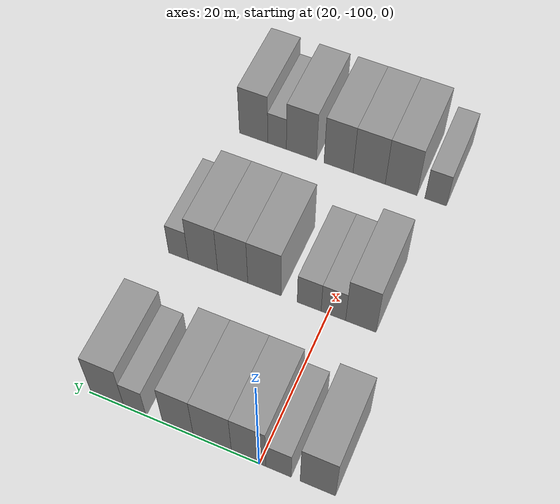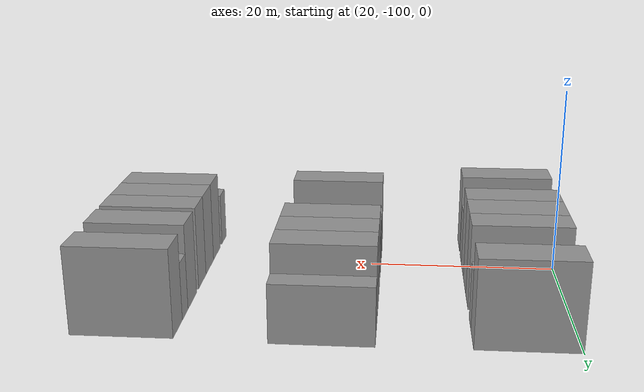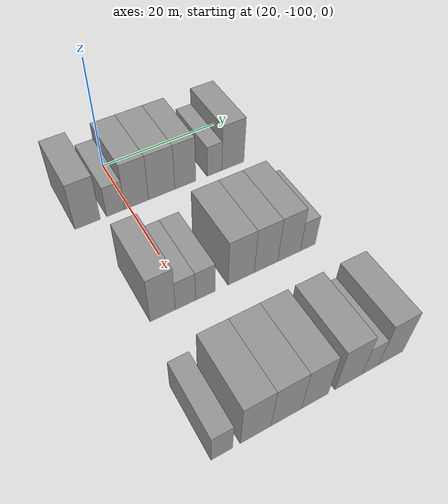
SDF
<sdf version="1.6">
 <world name="default">
  <model name="building_29">
   <static>1</static>
   <pose>25.0000 -106.5607 0 0.000000 0.000000 0.000000</pose>
   <link name="link">
    <pose>0 0 4.50 0 0 0</pose>
    <collision name="collision"><geometry><box><size>10.0000 3.9310 9.0000</size></box></geometry></collision>
    <visual name="visual">
     <cast_shadows>0</cast_shadows>
     <geometry><box><size>10.0000 3.9310 9.0000</size></box></geometry>
     <material>
      <script>
       <uri>model://grey_wall/materials/scripts</uri>
       <uri>model://grey_wall/materials/textures</uri>
       <name>vrc/grey_wall</name>
      </script>
     </material>
    </visual>
   </link>
  </model>
  <model name="building_30">
   <static>1</static>
   <pose>25.0000 -102.1648 0 0.000000 0.000000 0.000000</pose>
   <link name="link">
    <pose>0 0 3.00 0 0 0</pose>
    <collision name="collision"><geometry><box><size>10.0000 2.8607 6.0000</size></box></geometry></collision>
    <visual name="visual">
     <cast_shadows>0</cast_shadows>
     <geometry><box><size>10.0000 2.8607 6.0000</size></box></geometry>
     <material>
      <script>
       <uri>model://grey_wall/materials/scripts</uri>
       <uri>model://grey_wall/materials/textures</uri>
       <name>vrc/grey_wall</name>
      </script>
     </material>
    </visual>
   </link>
  </model>
  <model name="building_31">
   <static>1</static>
   <pose>25.0000 -98.7727 0 0.000000 0.000000 0.000000</pose>
   <link name="link">
    <pose>0 0 4.50 0 0 0</pose>
    <collision name="collision"><geometry><box><size>10.0000 3.9235 9.0000</size></box></geometry></collision>
    <visual name="visual">
     <cast_shadows>0</cast_shadows>
     <geometry><box><size>10.0000 3.9235 9.0000</size></box></geometry>
     <material>
      <script>
       <uri>model://grey_wall/materials/scripts</uri>
       <uri>model://grey_wall/materials/textures</uri>
       <name>vrc/grey_wall</name>
      </script>
     </material>
    </visual>
   </link>
  </model>
  <model name="building_32">
   <static>1</static>
   <pose>25.0000 -94.6060 0 0.000000 0.000000 0.000000</pose>
   <link name="link">
    <pose>0 0 4.50 0 0 0</pose>
    <collision name="collision"><geometry><box><size>10.0000 4.4098 9.0000</size></box></geometry></collision>
    <visual name="visual">
     <cast_shadows>0</cast_shadows>
     <geometry><box><size>10.0000 4.4098 9.0000</size></box></geometry>
     <material>
      <script>
       <uri>model://grey_wall/materials/scripts</uri>
       <uri>model://grey_wall/materials/textures</uri>
       <name>vrc/grey_wall</name>
      </script>
     </material>
    </visual>
   </link>
  </model>
  <model name="building_33">
   <static>1</static>
   <pose>25.0000 -90.6006 0 0.000000 0.000000 0.000000</pose>
   <link name="link">
    <pose>0 0 4.50 0 0 0</pose>
    <collision name="collision"><geometry><box><size>10.0000 3.6011 9.0000</size></box></geometry></collision>
    <visual name="visual">
     <cast_shadows>0</cast_shadows>
     <geometry><box><size>10.0000 3.6011 9.0000</size></box></geometry>
     <material>
      <script>
       <uri>model://grey_wall/materials/scripts</uri>
       <uri>model://grey_wall/materials/textures</uri>
       <name>vrc/grey_wall</name>
      </script>
     </material>
    </visual>
   </link>
  </model>
  <model name="building_34">
   <static>1</static>
   <pose>25.0000 -85.4847 0 0.000000 0.000000 0.000000</pose>
   <link name="link">
    <pose>0 0 3.00 0 0 0</pose>
    <collision name="collision"><geometry><box><size>10.0000 2.6308 6.0000</size></box></geometry></collision>
    <visual name="visual">
     <cast_shadows>0</cast_shadows>
     <geometry><box><size>10.0000 2.6308 6.0000</size></box></geometry>
     <material>
      <script>
       <uri>model://grey_wall/materials/scripts</uri>
       <uri>model://grey_wall/materials/textures</uri>
       <name>vrc/grey_wall</name>
      </script>
     </material>
    </visual>
   </link>
  </model>
  <model name="building_35">
   <static>1</static>
   <pose>25.0000 -82.1748 0 0.000000 0.000000 0.000000</pose>
   <link name="link">
    <pose>0 0 4.50 0 0 0</pose>
    <collision name="collision"><geometry><box><size>10.0000 3.9889 9.0000</size></box></geometry></collision>
    <visual name="visual">
     <cast_shadows>0</cast_shadows>
     <geometry><box><size>10.0000 3.9889 9.0000</size></box></geometry>
     <material>
      <script>
       <uri>model://grey_wall/materials/scripts</uri>
       <uri>model://grey_wall/materials/textures</uri>
       <name>vrc/grey_wall</name>
      </script>
     </material>
    </visual>
   </link>
  </model>
  <model name="building_146">
   <static>1</static>
   <pose>44.0000 -103.9223 0 0.000000 0.000000 0.000000</pose>
   <link name="link">
    <pose>0 0 4.50 0 0 0</pose>
    <collision name="collision"><geometry><box><size>10.0000 3.6464 9.0000</size></box></geometry></collision>
    <visual name="visual">
     <cast_shadows>0</cast_shadows>
     <geometry><box><size>10.0000 3.6464 9.0000</size></box></geometry>
     <material>
      <script>
       <uri>model://grey_wall/materials/scripts</uri>
       <uri>model://grey_wall/materials/textures</uri>
       <name>vrc/grey_wall</name>
      </script>
     </material>
    </visual>
   </link>
  </model>
  <model name="building_147">
   <static>1</static>
   <pose>44.0000 -100.6152 0 0.000000 0.000000 0.000000</pose>
   <link name="link">
    <pose>0 0 3.00 0 0 0</pose>
    <collision name="collision"><geometry><box><size>10.0000 2.9677 6.0000</size></box></geometry></collision>
    <visual name="visual">
     <cast_shadows>0</cast_shadows>
     <geometry><box><size>10.0000 2.9677 6.0000</size></box></geometry>
     <material>
      <script>
       <uri>model://grey_wall/materials/scripts</uri>
       <uri>model://grey_wall/materials/textures</uri>
       <name>vrc/grey_wall</name>
      </script>
     </material>
    </visual>
   </link>
  </model>
  <model name="building_148">
   <static>1</static>
   <pose>44.0000 -97.6734 0 0.000000 0.000000 0.000000</pose>
   <link name="link">
    <pose>0 0 3.00 0 0 0</pose>
    <collision name="collision"><geometry><box><size>10.0000 2.9159 6.0000</size></box></geometry></collision>
    <visual name="visual">
     <cast_shadows>0</cast_shadows>
     <geometry><box><size>10.0000 2.9159 6.0000</size></box></geometry>
     <material>
      <script>
       <uri>model://grey_wall/materials/scripts</uri>
       <uri>model://grey_wall/materials/textures</uri>
       <name>vrc/grey_wall</name>
      </script>
     </material>
    </visual>
   </link>
  </model>
  <model name="building_149">
   <static>1</static>
   <pose>44.0000 -92.1470 0 0.000000 0.000000 0.000000</pose>
   <link name="link">
    <pose>0 0 4.50 0 0 0</pose>
    <collision name="collision"><geometry><box><size>10.0000 4.1369 9.0000</size></box></geometry></collision>
    <visual name="visual">
     <cast_shadows>0</cast_shadows>
     <geometry><box><size>10.0000 4.1369 9.0000</size></box></geometry>
     <material>
      <script>
       <uri>model://grey_wall/materials/scripts</uri>
       <uri>model://grey_wall/materials/textures</uri>
       <name>vrc/grey_wall</name>
      </script>
     </material>
    </visual>
   </link>
  </model>
  <model name="building_150">
   <static>1</static>
   <pose>44.0000 -88.1755 0 0.000000 0.000000 0.000000</pose>
   <link name="link">
    <pose>0 0 4.50 0 0 0</pose>
    <collision name="collision"><geometry><box><size>10.0000 3.8061 9.0000</size></box></geometry></collision>
    <visual name="visual">
     <cast_shadows>0</cast_shadows>
     <geometry><box><size>10.0000 3.8061 9.0000</size></box></geometry>
     <material>
      <script>
       <uri>model://grey_wall/materials/scripts</uri>
       <uri>model://grey_wall/materials/textures</uri>
       <name>vrc/grey_wall</name>
      </script>
     </material>
    </visual>
   </link>
  </model>
  <model name="building_151">
   <static>1</static>
   <pose>44.0000 -84.3957 0 0.000000 0.000000 0.000000</pose>
   <link name="link">
    <pose>0 0 4.50 0 0 0</pose>
    <collision name="collision"><geometry><box><size>10.0000 3.7534 9.0000</size></box></geometry></collision>
    <visual name="visual">
     <cast_shadows>0</cast_shadows>
     <geometry><box><size>10.0000 3.7534 9.0000</size></box></geometry>
     <material>
      <script>
       <uri>model://grey_wall/materials/scripts</uri>
       <uri>model://grey_wall/materials/textures</uri>
       <name>vrc/grey_wall</name>
      </script>
     </material>
    </visual>
   </link>
  </model>
  <model name="building_152">
   <static>1</static>
   <pose>44.0000 -81.2618 0 0.000000 0.000000 0.000000</pose>
   <link name="link">
    <pose>0 0 3.00 0 0 0</pose>
    <collision name="collision"><geometry><box><size>10.0000 2.5145 6.0000</size></box></geometry></collision>
    <visual name="visual">
     <cast_shadows>0</cast_shadows>
     <geometry><box><size>10.0000 2.5145 6.0000</size></box></geometry>
     <material>
      <script>
       <uri>model://grey_wall/materials/scripts</uri>
       <uri>model://grey_wall/materials/textures</uri>
       <name>vrc/grey_wall</name>
      </script>
     </material>
    </visual>
   </link>
  </model>
  <model name="building_264">
   <static>1</static>
   <pose>63.0000 -106.1515 0 0.000000 0.000000 0.000000</pose>
   <link name="link">
    <pose>0 0 3.00 0 0 0</pose>
    <collision name="collision"><geometry><box><size>10.0000 2.7320 6.0000</size></box></geometry></collision>
    <visual name="visual">
     <cast_shadows>0</cast_shadows>
     <geometry><box><size>10.0000 2.7320 6.0000</size></box></geometry>
     <material>
      <script>
       <uri>model://grey_wall/materials/scripts</uri>
       <uri>model://grey_wall/materials/textures</uri>
       <name>vrc/grey_wall</name>
      </script>
     </material>
    </visual>
   </link>
  </model>
  <model name="building_265">
   <static>1</static>
   <pose>63.0000 -101.7500 0 0.000000 0.000000 0.000000</pose>
   <link name="link">
    <pose>0 0 4.50 0 0 0</pose>
    <collision name="collision"><geometry><box><size>10.0000 4.0712 9.0000</size></box></geometry></collision>
    <visual name="visual">
     <cast_shadows>0</cast_shadows>
     <geometry><box><size>10.0000 4.0712 9.0000</size></box></geometry>
     <material>
      <script>
       <uri>model://grey_wall/materials/scripts</uri>
       <uri>model://grey_wall/materials/textures</uri>
       <name>vrc/grey_wall</name>
      </script>
     </material>
    </visual>
   </link>
  </model>
  <model name="building_266">
   <static>1</static>
   <pose>63.0000 -97.6245 0 0.000000 0.000000 0.000000</pose>
   <link name="link">
    <pose>0 0 4.50 0 0 0</pose>
    <collision name="collision"><geometry><box><size>10.0000 4.1798 9.0000</size></box></geometry></collision>
    <visual name="visual">
     <cast_shadows>0</cast_shadows>
     <geometry><box><size>10.0000 4.1798 9.0000</size></box></geometry>
     <material>
      <script>
       <uri>model://grey_wall/materials/scripts</uri>
       <uri>model://grey_wall/materials/textures</uri>
       <name>vrc/grey_wall</name>
      </script>
     </material>
    </visual>
   </link>
  </model>
  <model name="building_267">
   <static>1</static>
   <pose>63.0000 -93.6269 0 0.000000 0.000000 0.000000</pose>
   <link name="link">
    <pose>0 0 4.50 0 0 0</pose>
    <collision name="collision"><geometry><box><size>10.0000 3.8154 9.0000</size></box></geometry></collision>
    <visual name="visual">
     <cast_shadows>0</cast_shadows>
     <geometry><box><size>10.0000 3.8154 9.0000</size></box></geometry>
     <material>
      <script>
       <uri>model://grey_wall/materials/scripts</uri>
       <uri>model://grey_wall/materials/textures</uri>
       <name>vrc/grey_wall</name>
      </script>
     </material>
    </visual>
   </link>
  </model>
  <model name="building_268">
   <static>1</static>
   <pose>63.0000 -88.7117 0 0.000000 0.000000 0.000000</pose>
   <link name="link">
    <pose>0 0 4.50 0 0 0</pose>
    <collision name="collision"><geometry><box><size>10.0000 4.0148 9.0000</size></box></geometry></collision>
    <visual name="visual">
     <cast_shadows>0</cast_shadows>
     <geometry><box><size>10.0000 4.0148 9.0000</size></box></geometry>
     <material>
      <script>
       <uri>model://grey_wall/materials/scripts</uri>
       <uri>model://grey_wall/materials/textures</uri>
       <name>vrc/grey_wall</name>
      </script>
     </material>
    </visual>
   </link>
  </model>
  <model name="building_269">
   <static>1</static>
   <pose>63.0000 -85.4565 0 0.000000 0.000000 0.000000</pose>
   <link name="link">
    <pose>0 0 3.00 0 0 0</pose>
    <collision name="collision"><geometry><box><size>10.0000 2.4957 6.0000</size></box></geometry></collision>
    <visual name="visual">
     <cast_shadows>0</cast_shadows>
     <geometry><box><size>10.0000 2.4957 6.0000</size></box></geometry>
     <material>
      <script>
       <uri>model://grey_wall/materials/scripts</uri>
       <uri>model://grey_wall/materials/textures</uri>
       <name>vrc/grey_wall</name>
      </script>
     </material>
    </visual>
   </link>
  </model>
  <model name="building_270">
   <static>1</static>
   <pose>63.0000 -82.2836 0 0.000000 0.000000 0.000000</pose>
   <link name="link">
    <pose>0 0 4.50 0 0 0</pose>
    <collision name="collision"><geometry><box><size>10.0000 3.8500 9.0000</size></box></geometry></collision>
    <visual name="visual">
     <cast_shadows>0</cast_shadows>
     <geometry><box><size>10.0000 3.8500 9.0000</size></box></geometry>
     <material>
      <script>
       <uri>model://grey_wall/materials/scripts</uri>
       <uri>model://grey_wall/materials/textures</uri>
       <name>vrc/grey_wall</name>
      </script>
     </material>
    </visual>
   </link>
  </model>
 </world>
</sdf>
